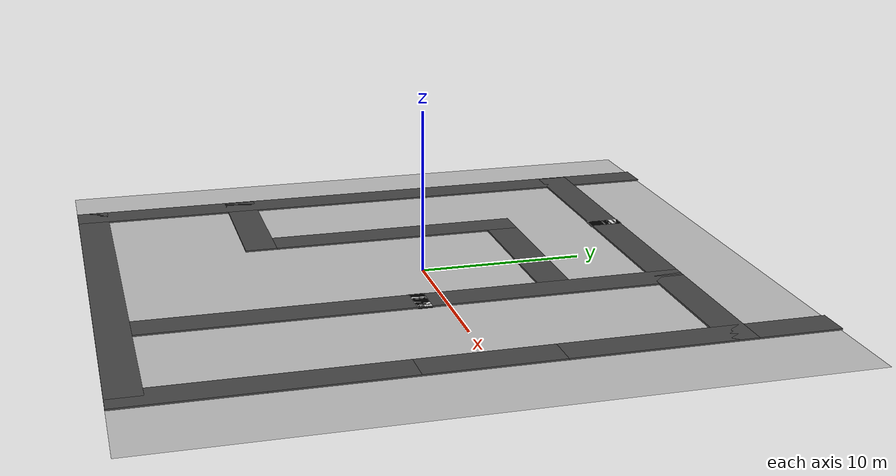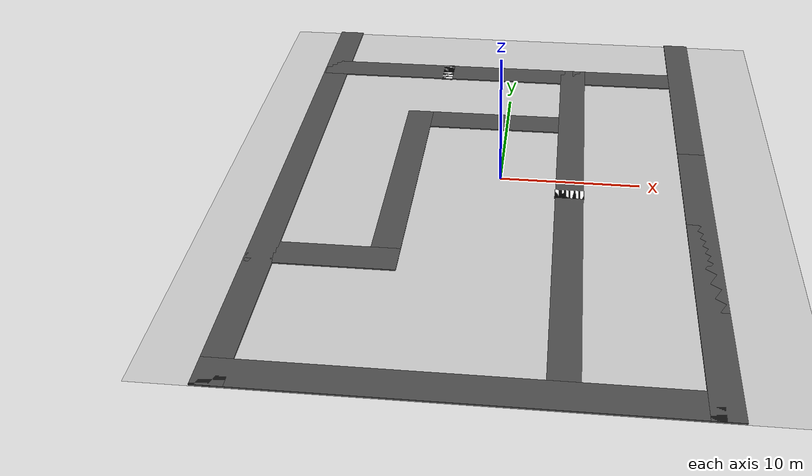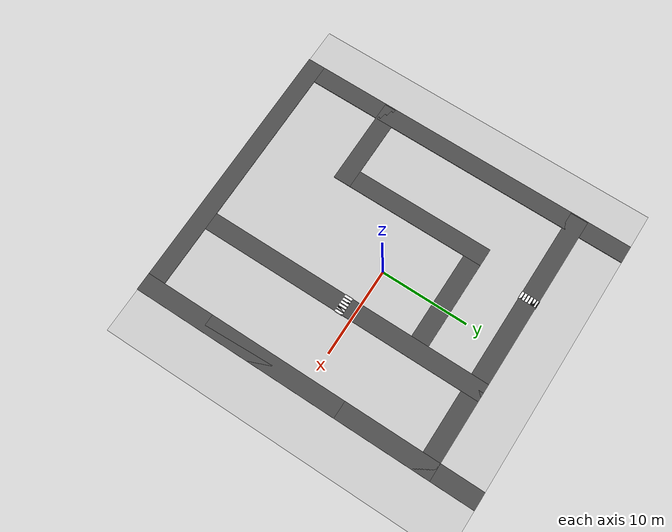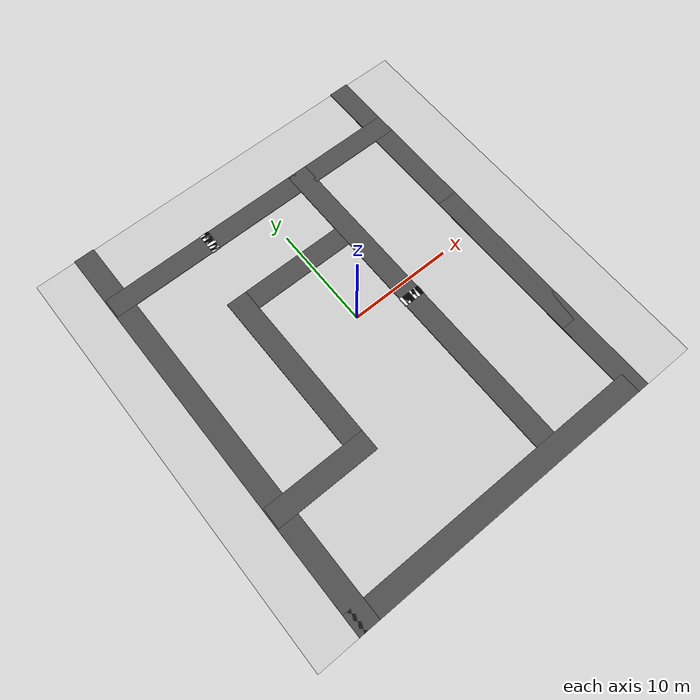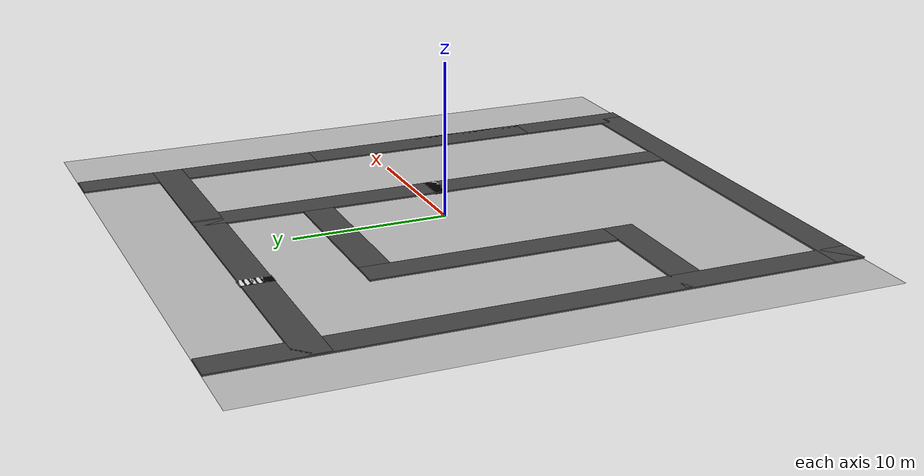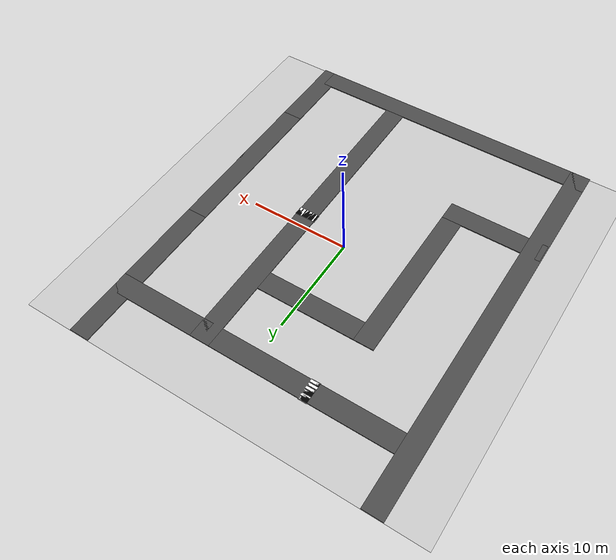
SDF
<sdf version="1.10">
 <world name="default">
  <physics name="default_physics" type="ode">
   <max_step_size>0.001</max_step_size>
   <real_time_factor>1</real_time_factor>
   <real_time_update_rate>1000</real_time_update_rate>
  </physics>
  <gravity>0 0 -9.8000000000000007</gravity>
  <magnetic_field>5.5644999999999998e-06 2.2875799999999999e-05 -4.2388400000000002e-05</magnetic_field>
  <atmosphere type="adiabatic"/>
  <scene>
   <ambient>0.400000006 0.400000006 0.400000006 1</ambient>
   <background>0.699999988 0.699999988 0.699999988 1</background>
   <shadows>true</shadows>
  </scene>
  <model name="custom_ground">
   <static>true</static>
   <link name="ground_link">
    <collision name="collision">
     <geometry><plane><normal>0 0 1</normal><size>40 40</size></plane></geometry>
    </collision>
    <visual name="visual">
     <geometry><plane><normal>0 0 1</normal><size>40 40</size></plane></geometry>
     <material>
      <ambient>0.800000012 0.800000012 0.800000012 1</ambient>
      <diffuse>0.800000012 0.800000012 0.800000012 1</diffuse>
      <specular>0.100000001 0.100000001 0.100000001 1</specular>
     </material>
    </visual>
    <inertial>
     <mass>1</mass>
     <inertia><ixx>1</ixx><ixy>0</ixy><ixz>0</ixz><iyy>1</iyy><iyz>0</iyz><izz>1</izz></inertia>
    </inertial>
   </link>
  </model>
  <model name="road_straight_1">
   <static>true</static>
   <pose>-0.10000000000000001 14 0 0 0 0</pose>
   <link name="link">
    <visual name="visual">
     <geometry><box><size>10 2 0.10000000000000001</size></box></geometry>
     <material>
      <script><uri>file://media/materials/scripts/gazebo.material</uri><name>Gazebo/Asphalt</name></script>
     </material>
     <pose>-0.10000000000000001 0 0.050000000000000003 0 0 0</pose>
    </visual>
    <collision name="collision">
     <geometry><box><size>10 2 0.10000000000000001</size></box></geometry>
     <pose>0 0 0.050000000000000003 0 0 0</pose>
    </collision>
    <inertial>
     <mass>1</mass>
     <inertia><ixx>1</ixx><ixy>0</ixy><ixz>0</ixz><iyy>1</iyy><iyz>0</iyz><izz>1</izz></inertia>
    </inertial>
   </link>
  </model>
  <model name="road_straight_11">
   <static>true</static>
   <pose>-10.9 14 0 0 0 0</pose>
   <link name="link">
    <visual name="visual">
     <geometry><box><size>10 2 0.10000000000000001</size></box></geometry>
     <material>
      <script><uri>file://media/materials/scripts/gazebo.material</uri><name>Gazebo/Asphalt</name></script>
     </material>
     <pose>-0.10000000000000001 0 0.050000000000000003 0 0 0</pose>
    </visual>
    <collision name="collision">
     <geometry><box><size>10 2 0.10000000000000001</size></box></geometry>
     <pose>0 0 0.050000000000000003 0 0 0</pose>
    </collision>
    <inertial>
     <mass>1</mass>
     <inertia><ixx>1</ixx><ixy>0</ixy><ixz>0</ixz><iyy>1</iyy><iyz>0</iyz><izz>1</izz></inertia>
    </inertial>
   </link>
  </model>
  <model name="road_straight_7">
   <static>true</static>
   <pose>-10.9 -9 0 0 0 0</pose>
   <link name="link">
    <visual name="visual">
     <geometry><box><size>10 2 0.10000000000000001</size></box></geometry>
     <material>
      <script><uri>file://media/materials/scripts/gazebo.material</uri><name>Gazebo/Asphalt</name></script>
     </material>
     <pose>-0.10000000000000001 0 0.050000000000000003 0 0 0</pose>
    </visual>
    <collision name="collision">
     <geometry><box><size>10 2 0.10000000000000001</size></box></geometry>
     <pose>0 0 0.050000000000000003 0 0 0</pose>
    </collision>
    <inertial>
     <mass>1</mass>
     <inertia><ixx>1</ixx><ixy>0</ixy><ixz>0</ixz><iyy>1</iyy><iyz>0</iyz><izz>1</izz></inertia>
    </inertial>
   </link>
  </model>
  <model name="road_straight_6">
   <static>true</static>
   <pose>-1 -19 0 0 0 0</pose>
   <link name="link">
    <visual name="visual">
     <geometry><box><size>30 2 0.10000000000000001</size></box></geometry>
     <material>
      <script><uri>file://media/materials/scripts/gazebo.material</uri><name>Gazebo/Asphalt</name></script>
     </material>
     <pose>-0.10000000000000001 0 0.050000000000000003 0 0 0</pose>
    </visual>
    <collision name="collision">
     <geometry><box><size>10 2 0.10000000000000001</size></box></geometry>
     <pose>0 0 0.050000000000000003 0 0 0</pose>
    </collision>
    <inertial>
     <mass>1</mass>
     <inertia><ixx>1</ixx><ixy>0</ixy><ixz>0</ixz><iyy>1</iyy><iyz>0</iyz><izz>1</izz></inertia>
    </inertial>
   </link>
  </model>
  <model name="road_turn_1">
   <static>true</static>
   <pose>5 7 0 0 0 1.5708000000000006</pose>
   <link name="link">
    <visual name="visual">
     <geometry><box><size>16 2 0.10000000000000001</size></box></geometry>
     <material>
      <script><uri>file://media/materials/scripts/gazebo.material</uri><name>Gazebo/Asphalt</name></script>
     </material>
     <pose>0 0 0.050000000000000003 0 0 0</pose>
    </visual>
    <collision name="collision">
     <geometry><box><size>16 2 0.10000000000000001</size></box></geometry>
     <pose>0 0 0.050000000000000003 0 0 0</pose>
    </collision>
    <inertial>
     <mass>1</mass>
     <inertia><ixx>1</ixx><ixy>0</ixy><ixz>0</ixz><iyy>1</iyy><iyz>0</iyz><izz>1</izz></inertia>
    </inertial>
   </link>
  </model>
  <model name="road_turn_3">
   <static>true</static>
   <pose>-7 0 0 0 0 1.5708000000000006</pose>
   <link name="link">
    <visual name="visual">
     <geometry><box><size>16 2 0.10000000000000001</size></box></geometry>
     <material>
      <script><uri>file://media/materials/scripts/gazebo.material</uri><name>Gazebo/Asphalt</name></script>
     </material>
     <pose>0 0 0.050000000000000003 0 0 0</pose>
    </visual>
    <collision name="collision">
     <geometry><box><size>16 2 0.10000000000000001</size></box></geometry>
     <pose>0 0 0.050000000000000003 0 0 0</pose>
    </collision>
    <inertial>
     <mass>1</mass>
     <inertia><ixx>1</ixx><ixy>0</ixy><ixz>0</ixz><iyy>1</iyy><iyz>0</iyz><izz>1</izz></inertia>
    </inertial>
   </link>
  </model>
  <model name="road_turn_2">
   <static>true</static>
   <pose>5 -9.9499999999999993 0 0 0 1.5708000000000006</pose>
   <link name="link">
    <visual name="visual">
     <geometry><box><size>16.100000000000001 2 0.10000000000000001</size></box></geometry>
     <material>
      <script><uri>file://media/materials/scripts/gazebo.material</uri><name>Gazebo/Asphalt</name></script>
     </material>
     <pose>0 0 0.050000000000000003 0 0 0</pose>
    </visual>
    <collision name="collision">
     <geometry><box><size>16 2 0.10000000000000001</size></box></geometry>
     <pose>0 0 0.050000000000000003 0 0 0</pose>
    </collision>
    <inertial>
     <mass>1</mass>
     <inertia><ixx>1</ixx><ixy>0</ixy><ixz>0</ixz><iyy>1</iyy><iyz>0</iyz><izz>1</izz></inertia>
    </inertial>
   </link>
  </model>
  <model name="road_turn_4">
   <static>true</static>
   <pose>14 12 0 0 0 1.5708000000000006</pose>
   <link name="link">
    <visual name="visual">
     <geometry><box><size>16 2 0.10000000000000001</size></box></geometry>
     <material>
      <script><uri>file://media/materials/scripts/gazebo.material</uri><name>Gazebo/Asphalt</name></script>
     </material>
     <pose>0 0 0.050000000000000003 0 0 0</pose>
    </visual>
    <collision name="collision">
     <geometry><box><size>16 2 0.10000000000000001</size></box></geometry>
     <pose>0 0 0.050000000000000003 0 0 0</pose>
    </collision>
    <inertial>
     <mass>1</mass>
     <inertia><ixx>1</ixx><ixy>0</ixy><ixz>0</ixz><iyy>1</iyy><iyz>0</iyz><izz>1</izz></inertia>
    </inertial>
   </link>
  </model>
  <model name="road_turn_5">
   <static>true</static>
   <pose>14 -4 0 0 0 1.5708000000000006</pose>
   <link name="link">
    <visual name="visual">
     <geometry><box><size>16 2 0.10000000000000001</size></box></geometry>
     <material>
      <script><uri>file://media/materials/scripts/gazebo.material</uri><name>Gazebo/Asphalt</name></script>
     </material>
     <pose>0 0 0.050000000000000003 0 0 0</pose>
    </visual>
    <collision name="collision">
     <geometry><box><size>16 2 0.10000000000000001</size></box></geometry>
     <pose>0 0 0.050000000000000003 0 0 0</pose>
    </collision>
    <inertial>
     <mass>1</mass>
     <inertia><ixx>1</ixx><ixy>0</ixy><ixz>0</ixz><iyy>1</iyy><iyz>0</iyz><izz>1</izz></inertia>
    </inertial>
   </link>
  </model>
  <model name="road_turn_6">
   <static>true</static>
   <pose>14 -12 0 0 0 1.5708000000000006</pose>
   <link name="link">
    <visual name="visual">
     <geometry><box><size>16 2 0.10000000000000001</size></box></geometry>
     <material>
      <script><uri>file://media/materials/scripts/gazebo.material</uri><name>Gazebo/Asphalt</name></script>
     </material>
     <pose>0 0 0.050000000000000003 0 0 0</pose>
    </visual>
    <collision name="collision">
     <geometry><box><size>16 2 0.10000000000000001</size></box></geometry>
     <pose>0 0 0.050000000000000003 0 0 0</pose>
    </collision>
    <inertial>
     <mass>1</mass>
     <inertia><ixx>1</ixx><ixy>0</ixy><ixz>0</ixz><iyy>1</iyy><iyz>0</iyz><izz>1</izz></inertia>
    </inertial>
   </link>
  </model>
  <model name="road_turn_7">
   <static>true</static>
   <pose>-15.1 0 0 0 0 1.5708000000000006</pose>
   <link name="link">
    <visual name="visual">
     <geometry><box><size>40 2 0.10000000000000001</size></box></geometry>
     <material>
      <script><uri>file://media/materials/scripts/gazebo.material</uri><name>Gazebo/Asphalt</name></script>
     </material>
     <pose>0 0 0.050000000000000003 0 0 0</pose>
    </visual>
    <collision name="collision">
     <geometry><box><size>16 2 0.10000000000000001</size></box></geometry>
     <pose>0 0 0.050000000000000003 0 0 0</pose>
    </collision>
    <inertial>
     <mass>1</mass>
     <inertia><ixx>1</ixx><ixy>0</ixy><ixz>0</ixz><iyy>1</iyy><iyz>0</iyz><izz>1</izz></inertia>
    </inertial>
   </link>
  </model>
  <model name="road_straight_2">
   <static>true</static>
   <pose>-1 7 0 0 0 0</pose>
   <link name="link">
    <visual name="visual">
     <geometry><box><size>10 2 0.10000000000000001</size></box></geometry>
     <material>
      <script><uri>file://media/materials/scripts/gazebo.material</uri><name>Gazebo/Asphalt</name></script>
     </material>
     <pose>0 0 0.050000000000000003 0 0 0</pose>
    </visual>
    <collision name="collision">
     <geometry><box><size>10 2 0.10000000000000001</size></box></geometry>
     <pose>0 0 0.050000000000000003 0 0 0</pose>
    </collision>
    <inertial>
     <mass>1</mass>
     <inertia><ixx>1</ixx><ixy>0</ixy><ixz>0</ixz><iyy>1</iyy><iyz>0</iyz><izz>1</izz></inertia>
    </inertial>
   </link>
  </model>
  <model name="road_straight_4">
   <static>true</static>
   <pose>10 14 0 0 0 0</pose>
   <link name="link">
    <visual name="visual">
     <geometry><box><size>10 2 0.10000000000000001</size></box></geometry>
     <material>
      <script><uri>file://media/materials/scripts/gazebo.material</uri><name>Gazebo/Asphalt</name></script>
     </material>
     <pose>0 0 0.050000000000000003 0 0 0</pose>
    </visual>
    <collision name="collision">
     <geometry><box><size>10 2 0.10000000000000001</size></box></geometry>
     <pose>0 0 0.050000000000000003 0 0 0</pose>
    </collision>
    <inertial>
     <mass>1</mass>
     <inertia><ixx>1</ixx><ixy>0</ixy><ixz>0</ixz><iyy>1</iyy><iyz>0</iyz><izz>1</izz></inertia>
    </inertial>
   </link>
  </model>
  <model name="zebra_crossing">
   <static>true</static>
   <pose>5 -1.45 0 0 0 0</pose>
   <link name="zebra_link">
    <visual name="black_base">
     <pose>0 0 0.050000000000000003 0 0 0</pose>
     <geometry><box><size>2.1000000000000001 0.90000000000000002 0.10000000000000001</size></box></geometry>
     <material>
      <ambient>0 0 0 1</ambient>
      <diffuse>0 0 0 1</diffuse>
      <specular>0.100000001 0.100000001 0.100000001 1</specular>
     </material>
    </visual>
    <visual name="stripe1">
     <pose>-0.875 0 0.050000000000000003 0 0 0</pose>
     <geometry><box><size>0.25 0.90000000000000002 0.10000000000000001</size></box></geometry>
     <material><ambient>1 1 1 1</ambient><diffuse>1 1 1 1</diffuse></material>
    </visual>
    <visual name="stripe2">
     <pose>-0.52500000000000002 0 0.050000000000000003 0 0 0</pose>
     <geometry><box><size>0.25 0.90000000000000002 0.10000000000000001</size></box></geometry>
     <material><ambient>1 1 1 1</ambient><diffuse>1 1 1 1</diffuse></material>
    </visual>
    <visual name="stripe3">
     <pose>-0.17499999999999999 0 0.050000000000000003 0 0 0</pose>
     <geometry><box><size>0.25 0.90000000000000002 0.10000000000000001</size></box></geometry>
     <material><ambient>1 1 1 1</ambient><diffuse>1 1 1 1</diffuse></material>
    </visual>
    <visual name="stripe4">
     <pose>0.17499999999999999 0 0.050000000000000003 0 0 0</pose>
     <geometry><box><size>0.25 0.90000000000000002 0.10000000000000001</size></box></geometry>
     <material><ambient>1 1 1 1</ambient><diffuse>1 1 1 1</diffuse></material>
    </visual>
    <visual name="stripe5">
     <pose>0.52500000000000002 0 0.050000000000000003 0 0 0</pose>
     <geometry><box><size>0.25 0.90000000000000002 0.10000000000000001</size></box></geometry>
     <material><ambient>1 1 1 1</ambient><diffuse>1 1 1 1</diffuse></material>
    </visual>
    <visual name="stripe6">
     <pose>0.875 0 0.050000000000000003 0 0 0</pose>
     <geometry><box><size>0.25 0.90000000000000002 0.10000000000000001</size></box></geometry>
     <material><ambient>1 1 1 1</ambient><diffuse>1 1 1 1</diffuse></material>
    </visual>
    <inertial>
     <mass>1</mass>
     <inertia><ixx>1</ixx><ixy>0</ixy><ixz>0</ixz><iyy>1</iyy><iyz>0</iyz><izz>1</izz></inertia>
    </inertial>
   </link>
  </model>
  <model name="zebra_crossing2">
   <static>true</static>
   <pose>-5.5499999999999998 14 0 0 0 1.5708000000000006</pose>
   <link name="zebra_link2">
    <visual name="black_base">
     <pose>0 0 0.050000000000000003 0 0 0</pose>
     <geometry><box><size>2.1000000000000001 0.90000000000000002 0.10000000000000001</size></box></geometry>
     <material>
      <ambient>0 0 0 1</ambient>
      <diffuse>0 0 0 1</diffuse>
      <specular>0.100000001 0.100000001 0.100000001 1</specular>
     </material>
    </visual>
    <visual name="stripe1">
     <pose>-0.875 0 0.050000000000000003 0 0 0</pose>
     <geometry><box><size>0.25 0.90000000000000002 0.10000000000000001</size></box></geometry>
     <material><ambient>1 1 1 1</ambient><diffuse>1 1 1 1</diffuse></material>
    </visual>
    <visual name="stripe2">
     <pose>-0.52500000000000002 0 0.050000000000000003 0 0 0</pose>
     <geometry><box><size>0.25 0.90000000000000002 0.10000000000000001</size></box></geometry>
     <material><ambient>1 1 1 1</ambient><diffuse>1 1 1 1</diffuse></material>
    </visual>
    <visual name="stripe3">
     <pose>-0.17499999999999999 0 0.050000000000000003 0 0 0</pose>
     <geometry><box><size>0.25 0.90000000000000002 0.10000000000000001</size></box></geometry>
     <material><ambient>1 1 1 1</ambient><diffuse>1 1 1 1</diffuse></material>
    </visual>
    <visual name="stripe4">
     <pose>0.17499999999999999 0 0.050000000000000003 0 0 0</pose>
     <geometry><box><size>0.25 0.90000000000000002 0.10000000000000001</size></box></geometry>
     <material><ambient>1 1 1 1</ambient><diffuse>1 1 1 1</diffuse></material>
    </visual>
    <visual name="stripe5">
     <pose>0.52500000000000002 0 0.050000000000000003 0 0 0</pose>
     <geometry><box><size>0.25 0.90000000000000002 0.10000000000000001</size></box></geometry>
     <material><ambient>1 1 1 1</ambient><diffuse>1 1 1 1</diffuse></material>
    </visual>
    <visual name="stripe6">
     <pose>0.875 0 0.050000000000000003 0 0 0</pose>
     <geometry><box><size>0.25 0.90000000000000002 0.10000000000000001</size></box></geometry>
     <material><ambient>1 1 1 1</ambient><diffuse>1 1 1 1</diffuse></material>
    </visual>
    <inertial>
     <mass>1</mass>
     <inertia><ixx>1</ixx><ixy>0</ixy><ixz>0</ixz><iyy>1</iyy><iyz>0</iyz><izz>1</izz></inertia>
    </inertial>
   </link>
  </model>
  <light name="sun" type="directional">
   <pose>0 0 10 0 0 0</pose>
   <intensity>1</intensity>
   <direction>-0.5 0.5 -1</direction>
   <diffuse>1 1 1 1</diffuse>
   <specular>0.100000001 0.100000001 0.100000001 1</specular>
   <attenuation><range>10</range><linear>1</linear><constant>1</constant><quadratic>0</quadratic></attenuation>
   <spot><inner_angle>0</inner_angle><outer_angle>0</outer_angle><falloff>0</falloff></spot>
  </light>
 </world>
</sdf>
